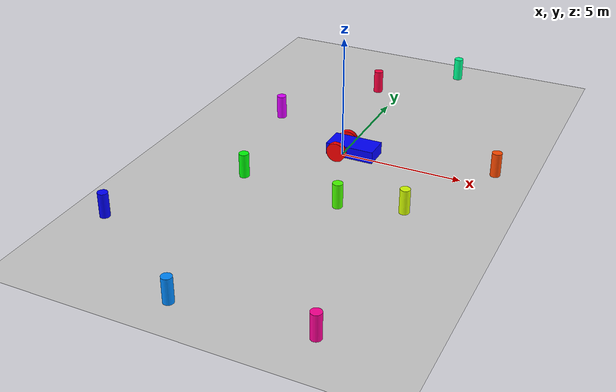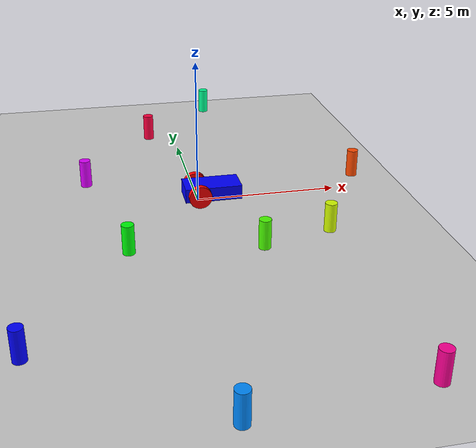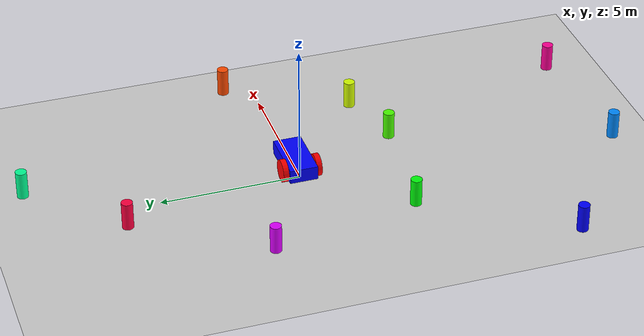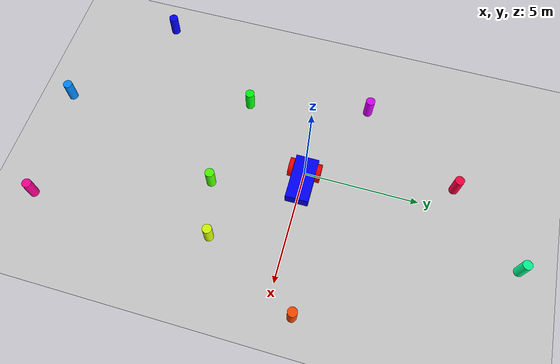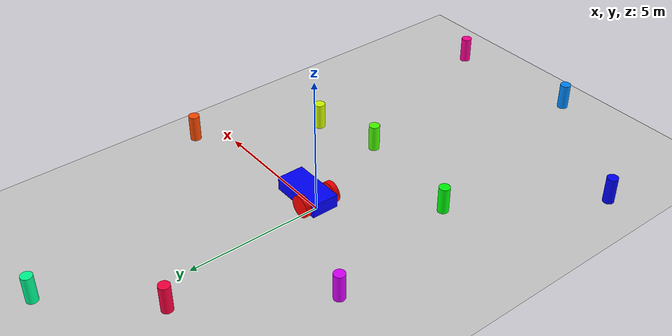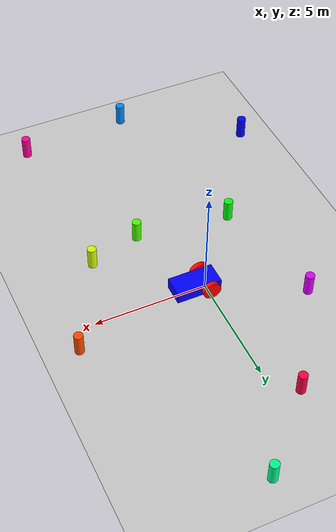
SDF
<?xml version="1.0" ?>
<sdf version="1.7">
    <world name="project_world">
        <physics name="1ms" type="ignored">
            <max_step_size>0.001</max_step_size>
            <real_time_factor>1.0</real_time_factor>
        </physics>
        <plugin
            filename="libignition-gazebo-physics-system.so"
            name="ignition::gazebo::systems::Physics">
        </plugin>
        <plugin
            filename="libignition-gazebo-user-commands-system.so"
            name="ignition::gazebo::systems::UserCommands">
        </plugin>
        <plugin
            filename="libignition-gazebo-scene-broadcaster-system.so"
            name="ignition::gazebo::systems::SceneBroadcaster">
        </plugin>
        <plugin filename="libignition-gazebo-imu-system.so"
                name="ignition::gazebo::systems::Imu">
        </plugin>
        <plugin
          filename="libignition-gazebo-sensors-system.so"
          name="ignition::gazebo::systems::Sensors">
          <render_engine>ogre2</render_engine>
        </plugin>

        <gui fullscreen="0">
            <plugin filename="GzScene3D" name="3D View">
                <ignition-gui>
                <title>3D View</title>
                <property type="bool" key="showTitleBar">false</property>
                <property type="string" key="state">docked</property>
                </ignition-gui>
                <engine>ogre2</engine>
                <scene>scene</scene>
                <ambient_light>0.4 0.4 0.4</ambient_light>
                <background_color>0.8 0.8 0.8</background_color>
            </plugin>

            <plugin filename="WorldControl" name="World control">
                <ignition-gui>
                <title>World control</title>
                <property type="bool" key="showTitleBar">false</property>
                <property type="bool" key="resizable">false</property>
                <property type="double" key="height">72</property>
                <property type="double" key="width">121</property>
                <property type="double" key="z">1</property>
                <property type="string" key="state">floating</property>
                <anchors target="3D View">
                    <line own="left" target="left"/>
                    <line own="bottom" target="bottom"/>
                </anchors>
                </ignition-gui>
                <play_pause>true</play_pause>
                <step>true</step>
                <start_paused>true</start_paused>
                <service>/world/project_world/control</service>
                <stats_topic>/world/project_world/stats</stats_topic>
            </plugin>

            <plugin filename="WorldStats" name="World stats">
                <ignition-gui>
                <title>World stats</title>
                <property type="bool" key="showTitleBar">false</property>
                <property type="bool" key="resizable">false</property>
                <property type="double" key="height">110</property>
                <property type="double" key="width">290</property>
                <property type="double" key="z">1</property>
                <property type="string" key="state">floating</property>
                <anchors target="3D View">
                    <line own="right" target="right"/>
                    <line own="bottom" target="bottom"/>
                </anchors>
                </ignition-gui>
                <sim_time>true</sim_time>
                <real_time>true</real_time>
                <real_time_factor>true</real_time_factor>
                <iterations>true</iterations>
                <topic>/world/project_world/stats</topic>
            </plugin>

            <plugin filename="EntityTree" name="Entity tree">
            </plugin>
        </gui>

        <light type="directional" name="sun">
            <cast_shadows>true</cast_shadows>
            <pose>0 0 10 0 0 0</pose>
            <diffuse>0.8 0.8 0.8 1</diffuse>
            <specular>0.2 0.2 0.2 1</specular>
            <attenuation>
                <range>1000</range>
                <constant>0.9</constant>
                <linear>0.01</linear>
                <quadratic>0.001</quadratic>
            </attenuation>
            <direction>-0.5 0.1 -0.9</direction>
        </light>

        <model name="ground_plane">
            <static>true</static>
            <link name="link">
                <collision name="collision">
                <geometry>
                    <plane>
                    <normal>0 0 1</normal>
                    </plane>
                </geometry>
                </collision>
                <visual name="visual">
                <geometry>
                    <plane>
                    <normal>0 0 1</normal>
                    <size>100 100</size>
                    </plane>
                </geometry>
                <material>
                    <ambient>0.8 0.8 0.8 1</ambient>
                    <diffuse>0.8 0.8 0.8 1</diffuse>
                    <specular>0.8 0.8 0.8 1</specular>
                </material>
                </visual>
            </link>
        </model>

        <!-- Generated Landmarks (10 total) -->

        <model name='landmark_0_color_122'>
            <static>true</static>
            <pose>-2.737 -3.284 0.500 0 0 0</pose>
            <link name='link'>
                <visual name='visual'>
                    <geometry>
                        <cylinder>
                            <radius>0.2</radius>
                            <length>1.0</length>
                        </cylinder>
                    </geometry>
                    <material>
                        <ambient>0.000 1.000 0.042 1</ambient>
                        <diffuse>0.000 1.000 0.042 1</diffuse>
                    </material>
                </visual>
                <collision name='collision'>
                    <geometry>
                        <cylinder>
                            <radius>0.2</radius>
                            <length>1.0</length>
                        </cylinder>
                    </geometry>
                </collision>
            </link>
        </model>

        <model name='landmark_1_color_344'>
            <static>true</static>
            <pose>-1.011 6.376 0.500 0 0 0</pose>
            <link name='link'>
                <visual name='visual'>
                    <geometry>
                        <cylinder>
                            <radius>0.2</radius>
                            <length>1.0</length>
                        </cylinder>
                    </geometry>
                    <material>
                        <ambient>1.000 0.000 0.250 1</ambient>
                        <diffuse>1.000 0.000 0.250 1</diffuse>
                    </material>
                </visual>
                <collision name='collision'>
                    <geometry>
                        <cylinder>
                            <radius>0.2</radius>
                            <length>1.0</length>
                        </cylinder>
                    </geometry>
                </collision>
            </link>
        </model>

        <model name='landmark_2_color_207'>
            <static>true</static>
            <pose>-0.972 -11.402 0.500 0 0 0</pose>
            <link name='link'>
                <visual name='visual'>
                    <geometry>
                        <cylinder>
                            <radius>0.2</radius>
                            <length>1.0</length>
                        </cylinder>
                    </geometry>
                    <material>
                        <ambient>0.000 0.542 1.000 1</ambient>
                        <diffuse>0.000 0.542 1.000 1</diffuse>
                    </material>
                </visual>
                <collision name='collision'>
                    <geometry>
                        <cylinder>
                            <radius>0.2</radius>
                            <length>1.0</length>
                        </cylinder>
                    </geometry>
                </collision>
            </link>
        </model>

        <model name='landmark_3_color_069'>
            <static>true</static>
            <pose>3.862 -3.107 0.500 0 0 0</pose>
            <link name='link'>
                <visual name='visual'>
                    <geometry>
                        <cylinder>
                            <radius>0.2</radius>
                            <length>1.0</length>
                        </cylinder>
                    </geometry>
                    <material>
                        <ambient>0.834 1.000 0.000 1</ambient>
                        <diffuse>0.834 1.000 0.000 1</diffuse>
                    </material>
                </visual>
                <collision name='collision'>
                    <geometry>
                        <cylinder>
                            <radius>0.2</radius>
                            <length>1.0</length>
                        </cylinder>
                    </geometry>
                </collision>
            </link>
        </model>

        <model name='landmark_4_color_292'>
            <static>true</static>
            <pose>-3.817 2.039 0.500 0 0 0</pose>
            <link name='link'>
                <visual name='visual'>
                    <geometry>
                        <cylinder>
                            <radius>0.2</radius>
                            <length>1.0</length>
                        </cylinder>
                    </geometry>
                    <material>
                        <ambient>0.874 0.000 1.000 1</ambient>
                        <diffuse>0.874 0.000 1.000 1</diffuse>
                    </material>
                </visual>
                <collision name='collision'>
                    <geometry>
                        <cylinder>
                            <radius>0.2</radius>
                            <length>1.0</length>
                        </cylinder>
                    </geometry>
                </collision>
            </link>
        </model>

        <model name='landmark_5_color_154'>
            <static>true</static>
            <pose>1.871 9.374 0.500 0 0 0</pose>
            <link name='link'>
                <visual name='visual'>
                    <geometry>
                        <cylinder>
                            <radius>0.2</radius>
                            <length>1.0</length>
                        </cylinder>
                    </geometry>
                    <material>
                        <ambient>0.000 1.000 0.583 1</ambient>
                        <diffuse>0.000 1.000 0.583 1</diffuse>
                    </material>
                </visual>
                <collision name='collision'>
                    <geometry>
                        <cylinder>
                            <radius>0.2</radius>
                            <length>1.0</length>
                        </cylinder>
                    </geometry>
                </collision>
            </link>
        </model>

        <model name='landmark_6_color_017'>
            <static>true</static>
            <pose>6.101 1.027 0.500 0 0 0</pose>
            <link name='link'>
                <visual name='visual'>
                    <geometry>
                        <cylinder>
                            <radius>0.2</radius>
                            <length>1.0</length>
                        </cylinder>
                    </geometry>
                    <material>
                        <ambient>1.000 0.291 0.000 1</ambient>
                        <diffuse>1.000 0.291 0.000 1</diffuse>
                    </material>
                </visual>
                <collision name='collision'>
                    <geometry>
                        <cylinder>
                            <radius>0.2</radius>
                            <length>1.0</length>
                        </cylinder>
                    </geometry>
                </collision>
            </link>
        </model>

        <model name='landmark_7_color_239'>
            <static>true</static>
            <pose>-5.880 -8.081 0.500 0 0 0</pose>
            <link name='link'>
                <visual name='visual'>
                    <geometry>
                        <cylinder>
                            <radius>0.2</radius>
                            <length>1.0</length>
                        </cylinder>
                    </geometry>
                    <material>
                        <ambient>0.000 0.001 1.000 1</ambient>
                        <diffuse>0.000 0.001 1.000 1</diffuse>
                    </material>
                </visual>
                <collision name='collision'>
                    <geometry>
                        <cylinder>
                            <radius>0.2</radius>
                            <length>1.0</length>
                        </cylinder>
                    </geometry>
                </collision>
            </link>
        </model>

        <model name='landmark_8_color_102'>
            <static>true</static>
            <pose>1.485 -3.791 0.500 0 0 0</pose>
            <link name='link'>
                <visual name='visual'>
                    <geometry>
                        <cylinder>
                            <radius>0.2</radius>
                            <length>1.0</length>
                        </cylinder>
                    </geometry>
                    <material>
                        <ambient>0.293 1.000 0.000 1</ambient>
                        <diffuse>0.293 1.000 0.000 1</diffuse>
                    </material>
                </visual>
                <collision name='collision'>
                    <geometry>
                        <cylinder>
                            <radius>0.2</radius>
                            <length>1.0</length>
                        </cylinder>
                    </geometry>
                </collision>
            </link>
        </model>

        <model name='landmark_9_color_324'>
            <static>true</static>
            <pose>4.013 -10.969 0.500 0 0 0</pose>
            <link name='link'>
                <visual name='visual'>
                    <geometry>
                        <cylinder>
                            <radius>0.2</radius>
                            <length>1.0</length>
                        </cylinder>
                    </geometry>
                    <material>
                        <ambient>1.000 0.000 0.585 1</ambient>
                        <diffuse>1.000 0.000 0.585 1</diffuse>
                    </material>
                </visual>
                <collision name='collision'>
                    <geometry>
                        <cylinder>
                            <radius>0.2</radius>
                            <length>1.0</length>
                        </cylinder>
                    </geometry>
                </collision>
            </link>
        </model>

        <model name='vehicle_blue' canonical_link='chassis'>
            <pose relative_to='world'>0.0 0.0 0 0 0 0</pose>
            <frame name="lidar_frame" attached_to='chassis'>
                <pose>1.0 0 0.0 0 0 0</pose>
            </frame>

            <frame name="camera_frame" attached_to="chassis">
              <pose>1.0 0 0.0 0 0 0</pose>
            </frame>

            <link name='chassis'>
                <pose relative_to='__model__'>0.5 0 0.4 0 0 0</pose>
                <inertial>
                    <mass>1.14395</mass>
                    <inertia>
                        <ixx>0.095329</ixx>
                        <ixy>0</ixy>
                        <ixz>0</ixz>
                        <iyy>0.381317</iyy>
                        <iyz>0</iyz>
                        <izz>0.476646</izz>
                    </inertia>
                </inertial>
                <visual name='visual'>
                    <geometry>
                        <box>
                            <size>2.0 1.0 0.5</size>
                        </box>
                    </geometry>
                    <material>
                        <ambient>0.0 0.0 1.0 1</ambient>
                        <diffuse>0.0 0.0 1.0 1</diffuse>
                        <specular>0.0 0.0 1.0 1</specular>
                    </material>
                </visual>
                <collision name='collision'>
                    <geometry>
                        <box>
                            <size>2.0 1.0 0.5</size>
                        </box>
                    </geometry>
                </collision>
                <sensor name="imu_sensor" type="imu">
                    <imu>
                      <enable_orientation>false</enable_orientation>
                      <angular_velocity>
                        <x><noise type="gaussian"><mean>0.0</mean><stddev>0.0</stddev><bias_mean>0.0</bias_mean><bias_stddev>0.0</bias_stddev><dynamic_bias_stddev>0.0</dynamic_bias_stddev><dynamic_bias_correlation_time>3600</dynamic_bias_correlation_time></noise></x>
                        <y><noise type="gaussian"><mean>0.0</mean><stddev>0.0</stddev><bias_mean>0.0</bias_mean><bias_stddev>0.0</bias_stddev><dynamic_bias_stddev>0.0</dynamic_bias_stddev><dynamic_bias_correlation_time>3600</dynamic_bias_correlation_time></noise></y>
                        <z><noise type="gaussian"><mean>0.0</mean><stddev>0.0</stddev><bias_mean>0.0</bias_mean><bias_stddev>0.0</bias_stddev><dynamic_bias_stddev>0.0</dynamic_bias_stddev><dynamic_bias_correlation_time>3600</dynamic_bias_correlation_time></noise></z>
                      </angular_velocity>
                      <linear_acceleration>
                        <x><noise type="gaussian"><mean>0.0</mean><stddev>0.0</stddev><bias_mean>0.0</bias_mean><bias_stddev>0.0</bias_stddev><dynamic_bias_stddev>0.0</dynamic_bias_stddev><dynamic_bias_correlation_time>3600</dynamic_bias_correlation_time></noise></x>
                        <y><noise type="gaussian"><mean>0.0</mean><stddev>0.0</stddev><bias_mean>0.0</bias_mean><bias_stddev>0.0</bias_stddev><dynamic_bias_stddev>0.0</dynamic_bias_stddev><dynamic_bias_correlation_time>3600</dynamic_bias_correlation_time></noise></y>
                        <z><noise type="gaussian"><mean>0.0</mean><stddev>0.0</stddev><bias_mean>0.0</bias_mean><bias_stddev>0.0</bias_stddev><dynamic_bias_stddev>0.0</dynamic_bias_stddev><dynamic_bias_correlation_time>3600</dynamic_bias_correlation_time></noise></z>
                      </linear_acceleration>
                    </imu>
                    <always_on>1</always_on>
                    <update_rate>50</update_rate>
                    <visualize>true</visualize>
                    <topic>vehicle_blue/imu</topic>
                </sensor>
                <sensor name="front_camera" type="camera">
                  <pose relative_to="camera_frame">0 0 0 0 0 0</pose>
                  <topic>vehicle_blue/camera/image</topic>
                  <update_rate>30</update_rate>
                  <camera>
                    <horizontal_fov>1.0472</horizontal_fov>
                    <image>
                      <width>640</width>
                      <height>480</height>
                      <format>R8G8B8</format>
                    </image>
                    <clip>
                      <near>0.1</near>
                      <far>80.0</far>
                    </clip>
                    <noise>
                      <type>gaussian</type>
                      <mean>0.0</mean>
                      <stddev>0.05</stddev>
                    </noise>
                  </camera>
                  <always_on>1</always_on>
                  <visualize>true</visualize>
                </sensor>
            </link>
            <link name='left_wheel'>
                <pose relative_to="chassis">-0.5 0.6 0 -1.5707 0 0</pose>
                <inertial>
                    <mass>1</mass>
                    <inertia>
                        <ixx>0.043333</ixx>
                        <ixy>0</ixy>
                        <ixz>0</ixz>
                        <iyy>0.043333</iyy>
                        <iyz>0</iyz>
                        <izz>0.08</izz>
                    </inertia>
                </inertial>
                <visual name='visual'>
                    <geometry>
                        <cylinder>
                            <radius>0.4</radius>
                            <length>0.2</length>
                        </cylinder>
                    </geometry>
                    <material>
                        <ambient>1.0 0.0 0.0 1</ambient>
                        <diffuse>1.0 0.0 0.0 1</diffuse>
                        <specular>1.0 0.0 0.0 1</specular>
                    </material>
                </visual>
                <collision name='collision'>
                    <geometry>
                        <cylinder>
                            <radius>0.4</radius>
                            <length>0.2</length>
                        </cylinder>
                    </geometry>
                </collision>
            </link>
            <link name='right_wheel'>
                <pose relative_to="chassis">-0.5 -0.6 0 -1.5707 0 0</pose>
                <inertial>
                    <mass>1</mass>
                    <inertia>
                        <ixx>0.043333</ixx>
                        <ixy>0</ixy>
                        <ixz>0</ixz>
                        <iyy>0.043333</iyy>
                        <iyz>0</iyz>
                        <izz>0.08</izz>
                    </inertia>
                </inertial>
                <visual name='visual'>
                    <geometry>
                        <cylinder>
                            <radius>0.4</radius>
                            <length>0.2</length>
                        </cylinder>
                    </geometry>
                    <material>
                        <ambient>1.0 0.0 0.0 1</ambient>
                        <diffuse>1.0 0.0 0.0 1</diffuse>
                        <specular>1.0 0.0 0.0 1</specular>
                    </material>
                </visual>
                <collision name='collision'>
                    <geometry>
                        <cylinder>
                            <radius>0.4</radius>
                            <length>0.2</length>
                        </cylinder>
                    </geometry>
                </collision>
            </link>
            <frame name="caster_frame" attached_to='chassis'>
              <pose>0.8 0 -0.2 0 0 0</pose>
            </frame>
            <link name='caster'>
                <pose relative_to='caster_frame'/>
                <inertial>
                    <mass>1</mass>
                    <inertia>
                        <ixx>0.016</ixx>
                        <ixy>0</ixy>
                        <ixz>0</ixz>
                        <iyy>0.016</iyy>
                        <iyz>0</iyz>
                        <izz>0.016</izz>
                    </inertia>
                </inertial>
                <visual name='visual'>
                    <geometry>
                        <sphere>
                            <radius>0.2</radius>
                        </sphere>
                    </geometry>
                    <material>
                        <ambient>0.0 1 0.0 1</ambient>
                        <diffuse>0.0 1 0.0 1</diffuse>
                        <specular>0.0 1 0.0 1</specular>
                    </material>
                </visual>
                <collision name='collision'>
                    <geometry>
                        <sphere>
                            <radius>0.2</radius>
                        </sphere>
                    </geometry>
                </collision>
            </link>

            <joint name='left_wheel_joint' type='revolute'>
                <pose relative_to='left_wheel'/>
                <parent>chassis</parent>
                <child>left_wheel</child>
                <axis>
                    <xyz expressed_in='__model__'>0 1 0</xyz>
                    <limit>
                        <lower>-1.79769e+308</lower>
                        <upper>1.79769e+308</upper>
                    </limit>
                </axis>
            </joint>
            <joint name='right_wheel_joint' type='revolute'>
                <pose relative_to='right_wheel'/>
                <parent>chassis</parent>
                <child>right_wheel</child>
                <axis>
                    <xyz expressed_in='__model__'>0 1 0</xyz>
                    <limit>
                        <lower>-1.79769e+308</lower>
                        <upper>1.79769e+308</upper>
                    </limit>
                </axis>
            </joint>
            <joint name='caster_wheel' type='ball'>
                <parent>chassis</parent>
                <child>caster</child>
            </joint>
            <plugin
                filename="libignition-gazebo-diff-drive-system.so"
                name="ignition::gazebo::systems::DiffDrive">
                <left_joint>left_wheel_joint</left_joint>
                <right_joint>right_wheel_joint</right_joint>
                <wheel_separation>1.2</wheel_separation>
                <wheel_radius>0.4</wheel_radius>
                <odom_publish_frequency>1</odom_publish_frequency>
                <topic>vehicle_blue/cmd_vel</topic>
            </plugin>
        </model>
    </world>
</sdf>
